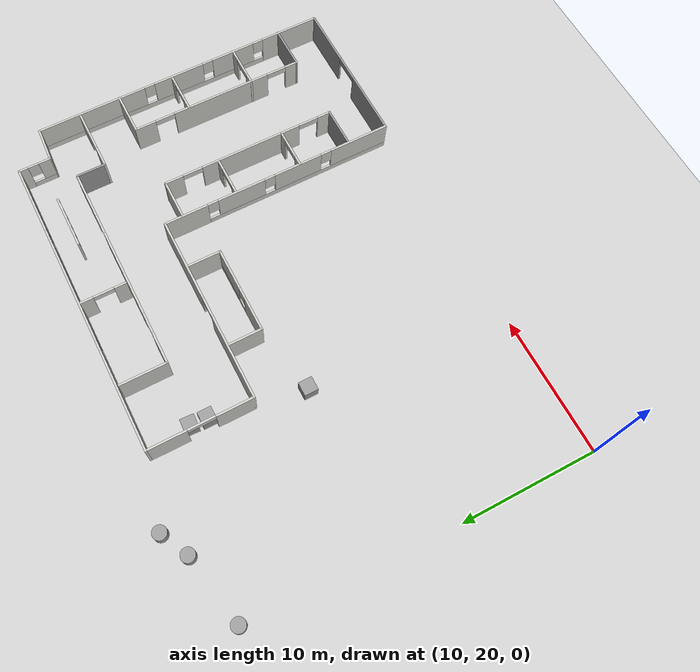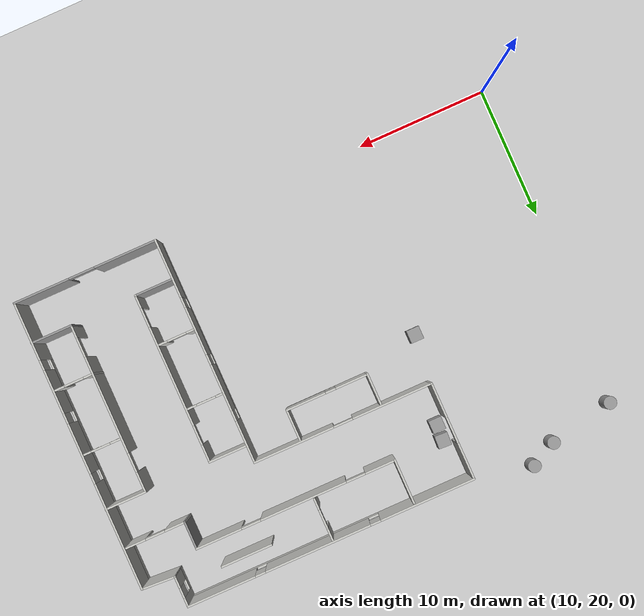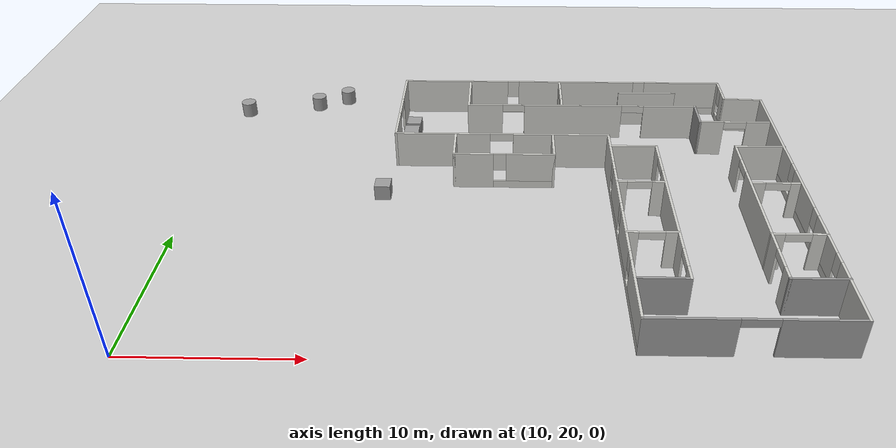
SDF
<sdf version="1.6">
 <world name="default">
  <model name="ground_plane">
   <static>1</static>
   <link name="link">
    <collision name="collision">
     <geometry><plane><normal>0 0 1</normal><size>100 100</size></plane></geometry>
     <surface><friction><ode><mu>100</mu><mu2>50</mu2></ode></friction></surface>
    </collision>
    <visual name="visual">
     <cast_shadows>0</cast_shadows>
     <geometry><plane><normal>0 0 1</normal><size>100 100</size></plane></geometry>
     <material>
      <script><uri>file://media/materials/scripts/gazebo.material</uri><name>Gazebo/Grey</name></script>
     </material>
    </visual>
   </link>
  </model>
  <model name="Multi_25_6">
   <pose>35.1581 33.1773 0 0 -0 0</pose>
   <link name="Wall_168">
    <pose>-1.27401 12.5 0 0 -0 0</pose>
    <visual name="Wall_168_Visual_0">
     <pose>-7.61112 0 1.25 0 -0 0</pose>
     <geometry><box><size>7.42777 0.15 2.5</size></box></geometry>
     <material>
      <script><uri>file://media/materials/scripts/gazebo.material</uri><name>Gazebo/CeilingTiled</name></script>
      <ambient>1 1 1 1</ambient>
     </material>
     <meta><layer>0</layer></meta>
    </visual>
    <collision name="Wall_168_Collision_0">
     <geometry><box><size>7.42777 0.15 2.5</size></box></geometry>
     <pose>-7.61112 0 1.25 0 -0 0</pose>
    </collision>
    <visual name="Wall_168_Visual_1">
     <pose>3.71388 0 0.25 0 -0 0</pose>
     <geometry><box><size>15.2222 0.15 0.5</size></box></geometry>
     <material>
      <script><uri>file://media/materials/scripts/gazebo.material</uri><name>Gazebo/CeilingTiled</name></script>
      <ambient>1 1 1 1</ambient>
     </material>
     <meta><layer>0</layer></meta>
    </visual>
    <collision name="Wall_168_Collision_1">
     <geometry><box><size>15.2222 0.15 0.5</size></box></geometry>
     <pose>3.71388 0 0.25 0 -0 0</pose>
    </collision>
    <visual name="Wall_168_Visual_2">
     <pose>1.03498 0 1.5 0 -0 0</pose>
     <geometry><box><size>8.26441 0.15 2</size></box></geometry>
     <material>
      <script><uri>file://media/materials/scripts/gazebo.material</uri><name>Gazebo/CeilingTiled</name></script>
      <ambient>1 1 1 1</ambient>
     </material>
     <meta><layer>0</layer></meta>
    </visual>
    <collision name="Wall_168_Collision_2">
     <geometry><box><size>8.26441 0.15 2</size></box></geometry>
     <pose>1.03498 0 1.5 0 -0 0</pose>
    </collision>
    <visual name="Wall_168_Visual_3">
     <pose>8.64609 0 1.5 0 -0 0</pose>
     <geometry><box><size>5.35782 0.15 2</size></box></geometry>
     <material>
      <script><uri>file://media/materials/scripts/gazebo.material</uri><name>Gazebo/CeilingTiled</name></script>
      <ambient>1 1 1 1</ambient>
     </material>
     <meta><layer>0</layer></meta>
    </visual>
    <collision name="Wall_168_Collision_3">
     <geometry><box><size>5.35782 0.15 2</size></box></geometry>
     <pose>8.64609 0 1.5 0 -0 0</pose>
    </collision>
    <visual name="Wall_168_Visual_4">
     <pose>-3.49723 0 1.9 0 -0 0</pose>
     <geometry><box><size>0.8 0.15 1.2</size></box></geometry>
     <material>
      <script><uri>file://media/materials/scripts/gazebo.material</uri><name>Gazebo/CeilingTiled</name></script>
      <ambient>1 1 1 1</ambient>
     </material>
     <meta><layer>0</layer></meta>
    </visual>
    <collision name="Wall_168_Collision_4">
     <geometry><box><size>0.8 0.15 1.2</size></box></geometry>
     <pose>-3.49723 0 1.9 0 -0 0</pose>
    </collision>
    <visual name="Wall_168_Visual_5">
     <pose>5.56718 0 1.9 0 -0 0</pose>
     <geometry><box><size>0.8 0.15 1.2</size></box></geometry>
     <material>
      <script><uri>file://media/materials/scripts/gazebo.material</uri><name>Gazebo/CeilingTiled</name></script>
      <ambient>1 1 1 1</ambient>
     </material>
     <meta><layer>0</layer></meta>
    </visual>
    <collision name="Wall_168_Collision_5">
     <geometry><box><size>0.8 0.15 1.2</size></box></geometry>
     <pose>5.56718 0 1.9 0 -0 0</pose>
    </collision>
   </link>
   <link name="Wall_170">
    <pose>-12.524 8.743 0 0 -0 -1.5708</pose>
    <visual name="Wall_170_Visual_0">
     <pose>-2.38097 0 1.25 0 -0 0</pose>
     <geometry><box><size>2.90205 0.15 2.5</size></box></geometry>
     <material>
      <script><uri>file://media/materials/scripts/gazebo.material</uri><name>Gazebo/CeilingTiled</name></script>
      <ambient>1 1 1 1</ambient>
     </material>
     <meta><layer>0</layer></meta>
    </visual>
    <collision name="Wall_170_Collision_0">
     <geometry><box><size>2.90205 0.15 2.5</size></box></geometry>
     <pose>-2.38097 0 1.25 0 -0 0</pose>
    </collision>
    <visual name="Wall_170_Visual_1">
     <pose>2.45103 0 1.25 0 -0 0</pose>
     <geometry><box><size>2.76195 0.15 2.5</size></box></geometry>
     <material>
      <script><uri>file://media/materials/scripts/gazebo.material</uri><name>Gazebo/CeilingTiled</name></script>
      <ambient>1 1 1 1</ambient>
     </material>
     <meta><layer>0</layer></meta>
    </visual>
    <collision name="Wall_170_Collision_1">
     <geometry><box><size>2.76195 0.15 2.5</size></box></geometry>
     <pose>2.45103 0 1.25 0 -0 0</pose>
    </collision>
    <visual name="Wall_170_Visual_2">
     <pose>0.070053 0 2.25 0 -0 0</pose>
     <geometry><box><size>2 0.15 0.5</size></box></geometry>
     <material>
      <script><uri>file://media/materials/scripts/gazebo.material</uri><name>Gazebo/CeilingTiled</name></script>
      <ambient>1 1 1 1</ambient>
     </material>
     <meta><layer>0</layer></meta>
    </visual>
    <collision name="Wall_170_Collision_2">
     <geometry><box><size>2 0.15 0.5</size></box></geometry>
     <pose>0.070053 0 2.25 0 -0 0</pose>
    </collision>
   </link>
   <link name="Wall_171">
    <pose>-5.56134 4.98605 0 0 -0 7e-06</pose>
    <visual name="Wall_171_Visual_0">
     <pose>-3.898 0 1.25 0 -0 0</pose>
     <geometry><box><size>6.27934 0.15 2.5</size></box></geometry>
     <material>
      <script><uri>file://media/materials/scripts/gazebo.material</uri><name>Gazebo/CeilingTiled</name></script>
      <ambient>1 1 1 1</ambient>
     </material>
     <meta><layer>0</layer></meta>
    </visual>
    <collision name="Wall_171_Collision_0">
     <geometry><box><size>6.27934 0.15 2.5</size></box></geometry>
     <pose>-3.898 0 1.25 0 -0 0</pose>
    </collision>
    <visual name="Wall_171_Visual_1">
     <pose>3.88967 0 1.25 0 -0 0</pose>
     <geometry><box><size>6.29601 0.15 2.5</size></box></geometry>
     <material>
      <script><uri>file://media/materials/scripts/gazebo.material</uri><name>Gazebo/CeilingTiled</name></script>
      <ambient>1 1 1 1</ambient>
     </material>
     <meta><layer>0</layer></meta>
    </visual>
    <collision name="Wall_171_Collision_1">
     <geometry><box><size>6.29601 0.15 2.5</size></box></geometry>
     <pose>3.88967 0 1.25 0 -0 0</pose>
    </collision>
    <visual name="Wall_171_Visual_2">
     <pose>-0.008335 0 2.25 0 -0 0</pose>
     <geometry><box><size>1.5 0.15 0.5</size></box></geometry>
     <material>
      <script><uri>file://media/materials/scripts/gazebo.material</uri><name>Gazebo/CeilingTiled</name></script>
      <ambient>1 1 1 1</ambient>
     </material>
     <meta><layer>0</layer></meta>
    </visual>
    <collision name="Wall_171_Collision_2">
     <geometry><box><size>1.5 0.15 0.5</size></box></geometry>
     <pose>-0.008335 0 2.25 0 -0 0</pose>
    </collision>
   </link>
   <link name="Wall_172">
    <pose>1.40116 -3.75695 0 0 -0 -1.57082</pose>
    <visual name="Wall_172_Visual_0">
     <pose>-7.15342 0 1.25 0 -0 0</pose>
     <geometry><box><size>3.32925 0.15 2.5</size></box></geometry>
     <material>
      <script><uri>file://media/materials/scripts/gazebo.material</uri><name>Gazebo/CeilingTiled</name></script>
      <ambient>1 1 1 1</ambient>
     </material>
     <meta><layer>0</layer></meta>
    </visual>
    <collision name="Wall_172_Collision_0">
     <geometry><box><size>3.32925 0.15 2.5</size></box></geometry>
     <pose>-7.15342 0 1.25 0 -0 0</pose>
    </collision>
    <visual name="Wall_172_Visual_1">
     <pose>1.66463 0 0.25 0 -0 0</pose>
     <geometry><box><size>14.3068 0.15 0.5</size></box></geometry>
     <material>
      <script><uri>file://media/materials/scripts/gazebo.material</uri><name>Gazebo/CeilingTiled</name></script>
      <ambient>1 1 1 1</ambient>
     </material>
     <meta><layer>0</layer></meta>
    </visual>
    <collision name="Wall_172_Collision_1">
     <geometry><box><size>14.3068 0.15 0.5</size></box></geometry>
     <pose>1.66463 0 0.25 0 -0 0</pose>
    </collision>
    <visual name="Wall_172_Visual_2">
     <pose>-2.86831 0 1.5 0 -0 0</pose>
     <geometry><box><size>3.64096 0.15 2</size></box></geometry>
     <material>
      <script><uri>file://media/materials/scripts/gazebo.material</uri><name>Gazebo/CeilingTiled</name></script>
      <ambient>1 1 1 1</ambient>
     </material>
     <meta><layer>0</layer></meta>
    </visual>
    <collision name="Wall_172_Collision_2">
     <geometry><box><size>3.64096 0.15 2</size></box></geometry>
     <pose>-2.86831 0 1.5 0 -0 0</pose>
    </collision>
    <visual name="Wall_172_Visual_3">
     <pose>1.60306 0 1.5 0 -0 0</pose>
     <geometry><box><size>3.70179 0.15 2</size></box></geometry>
     <material>
      <script><uri>file://media/materials/scripts/gazebo.material</uri><name>Gazebo/CeilingTiled</name></script>
      <ambient>1 1 1 1</ambient>
     </material>
     <meta><layer>0</layer></meta>
    </visual>
    <collision name="Wall_172_Collision_3">
     <geometry><box><size>3.70179 0.15 2</size></box></geometry>
     <pose>1.60306 0 1.5 0 -0 0</pose>
    </collision>
    <visual name="Wall_172_Visual_4">
     <pose>6.536 0 1.5 0 -0 0</pose>
     <geometry><box><size>4.56409 0.15 2</size></box></geometry>
     <material>
      <script><uri>file://media/materials/scripts/gazebo.material</uri><name>Gazebo/CeilingTiled</name></script>
      <ambient>1 1 1 1</ambient>
     </material>
     <meta><layer>0</layer></meta>
    </visual>
    <collision name="Wall_172_Collision_4">
     <geometry><box><size>4.56409 0.15 2</size></box></geometry>
     <pose>6.536 0 1.5 0 -0 0</pose>
    </collision>
    <visual name="Wall_172_Visual_5">
     <pose>-5.08879 0 1.9 0 -0 0</pose>
     <geometry><box><size>0.8 0.15 1.2</size></box></geometry>
     <material>
      <script><uri>file://media/materials/scripts/gazebo.material</uri><name>Gazebo/CeilingTiled</name></script>
      <ambient>1 1 1 1</ambient>
     </material>
     <meta><layer>0</layer></meta>
    </visual>
    <collision name="Wall_172_Collision_5">
     <geometry><box><size>0.8 0.15 1.2</size></box></geometry>
     <pose>-5.08879 0 1.9 0 -0 0</pose>
    </collision>
    <visual name="Wall_172_Visual_6">
     <pose>-0.647836 0 1.9 0 -0 0</pose>
     <geometry><box><size>0.8 0.15 1.2</size></box></geometry>
     <material>
      <script><uri>file://media/materials/scripts/gazebo.material</uri><name>Gazebo/CeilingTiled</name></script>
      <ambient>1 1 1 1</ambient>
     </material>
     <meta><layer>0</layer></meta>
    </visual>
    <collision name="Wall_172_Collision_6">
     <geometry><box><size>0.8 0.15 1.2</size></box></geometry>
     <pose>-0.647836 0 1.9 0 -0 0</pose>
    </collision>
    <visual name="Wall_172_Visual_7">
     <pose>3.85395 0 1.9 0 -0 0</pose>
     <geometry><box><size>0.8 0.15 1.2</size></box></geometry>
     <material>
      <script><uri>file://media/materials/scripts/gazebo.material</uri><name>Gazebo/CeilingTiled</name></script>
      <ambient>1 1 1 1</ambient>
     </material>
     <meta><layer>0</layer></meta>
    </visual>
    <collision name="Wall_172_Collision_7">
     <geometry><box><size>0.8 0.15 1.2</size></box></geometry>
     <pose>3.85395 0 1.9 0 -0 0</pose>
    </collision>
   </link>
   <link name="Wall_173">
    <pose>6.95099 -12.5 0 0 -0 0</pose>
    <visual name="Wall_173_Visual_0">
     <pose>-3.18207 0 1.25 0 -0 0</pose>
     <geometry><box><size>4.88587 0.15 2.5</size></box></geometry>
     <material>
      <script><uri>file://media/materials/scripts/gazebo.material</uri><name>Gazebo/Grey</name></script>
      <ambient>1 1 1 1</ambient>
     </material>
     <meta><layer>0</layer></meta>
    </visual>
    <collision name="Wall_173_Collision_0">
     <geometry><box><size>4.88587 0.15 2.5</size></box></geometry>
     <pose>-3.18207 0 1.25 0 -0 0</pose>
    </collision>
    <visual name="Wall_173_Visual_1">
     <pose>3.44293 0 1.25 0 -0 0</pose>
     <geometry><box><size>4.36413 0.15 2.5</size></box></geometry>
     <material>
      <script><uri>file://media/materials/scripts/gazebo.material</uri><name>Gazebo/Grey</name></script>
      <ambient>1 1 1 1</ambient>
     </material>
     <meta><layer>0</layer></meta>
    </visual>
    <collision name="Wall_173_Collision_1">
     <geometry><box><size>4.36413 0.15 2.5</size></box></geometry>
     <pose>3.44293 0 1.25 0 -0 0</pose>
    </collision>
    <visual name="Wall_173_Visual_2">
     <pose>0.260866 0 2.25 0 -0 0</pose>
     <geometry><box><size>2 0.15 0.5</size></box></geometry>
     <material>
      <script><uri>file://media/materials/scripts/gazebo.material</uri><name>Gazebo/Grey</name></script>
      <ambient>1 1 1 1</ambient>
     </material>
     <meta><layer>0</layer></meta>
    </visual>
    <collision name="Wall_173_Collision_2">
     <geometry><box><size>2 0.15 0.5</size></box></geometry>
     <pose>0.260866 0 2.25 0 -0 0</pose>
    </collision>
   </link>
   <link name="Wall_174">
    <pose>12.501 -1.25 0 0 -0 1.5708</pose>
    <visual name="Wall_174_Visual_0">
     <pose>-9.04295 0 1.25 0 -0 0</pose>
     <geometry><box><size>4.56409 0.15 2.5</size></box></geometry>
     <material>
      <script><uri>file://media/materials/scripts/gazebo.material</uri><name>Gazebo/CeilingTiled</name></script>
      <ambient>1 1 1 1</ambient>
     </material>
     <meta><layer>0</layer></meta>
    </visual>
    <collision name="Wall_174_Collision_0">
     <geometry><box><size>4.56409 0.15 2.5</size></box></geometry>
     <pose>-9.04295 0 1.25 0 -0 0</pose>
    </collision>
    <visual name="Wall_174_Visual_1">
     <pose>2.28205 0 0.25 0 -0 0</pose>
     <geometry><box><size>18.0859 0.15 0.5</size></box></geometry>
     <material>
      <script><uri>file://media/materials/scripts/gazebo.material</uri><name>Gazebo/CeilingTiled</name></script>
      <ambient>1 1 1 1</ambient>
     </material>
     <meta><layer>0</layer></meta>
    </visual>
    <collision name="Wall_174_Collision_1">
     <geometry><box><size>18.0859 0.15 0.5</size></box></geometry>
     <pose>2.28205 0 0.25 0 -0 0</pose>
    </collision>
    <visual name="Wall_174_Visual_2">
     <pose>-4.2621 0 1.5 0 -0 0</pose>
     <geometry><box><size>3.39762 0.15 2</size></box></geometry>
     <material>
      <script><uri>file://media/materials/scripts/gazebo.material</uri><name>Gazebo/CeilingTiled</name></script>
      <ambient>1 1 1 1</ambient>
     </material>
     <meta><layer>0</layer></meta>
    </visual>
    <collision name="Wall_174_Collision_2">
     <geometry><box><size>3.39762 0.15 2</size></box></geometry>
     <pose>-4.2621 0 1.5 0 -0 0</pose>
    </collision>
    <visual name="Wall_174_Visual_3">
     <pose>0.209274 0 1.5 0 -0 0</pose>
     <geometry><box><size>3.94513 0.15 2</size></box></geometry>
     <material>
      <script><uri>file://media/materials/scripts/gazebo.material</uri><name>Gazebo/CeilingTiled</name></script>
      <ambient>1 1 1 1</ambient>
     </material>
     <meta><layer>0</layer></meta>
    </visual>
    <collision name="Wall_174_Collision_3">
     <geometry><box><size>3.94513 0.15 2</size></box></geometry>
     <pose>0.209274 0 1.5 0 -0 0</pose>
    </collision>
    <visual name="Wall_174_Visual_4">
     <pose>7.15342 0 1.5 0 -0 0</pose>
     <geometry><box><size>8.34316 0.15 2</size></box></geometry>
     <material>
      <script><uri>file://media/materials/scripts/gazebo.material</uri><name>Gazebo/CeilingTiled</name></script>
      <ambient>1 1 1 1</ambient>
     </material>
     <meta><layer>0</layer></meta>
    </visual>
    <collision name="Wall_174_Collision_4">
     <geometry><box><size>8.34316 0.15 2</size></box></geometry>
     <pose>7.15342 0 1.5 0 -0 0</pose>
    </collision>
    <visual name="Wall_174_Visual_5">
     <pose>-6.36091 0 1.9 0 -0 0</pose>
     <geometry><box><size>0.8 0.15 1.2</size></box></geometry>
     <material>
      <script><uri>file://media/materials/scripts/gazebo.material</uri><name>Gazebo/CeilingTiled</name></script>
      <ambient>1 1 1 1</ambient>
     </material>
     <meta><layer>0</layer></meta>
    </visual>
    <collision name="Wall_174_Collision_5">
     <geometry><box><size>0.8 0.15 1.2</size></box></geometry>
     <pose>-6.36091 0 1.9 0 -0 0</pose>
    </collision>
    <visual name="Wall_174_Visual_6">
     <pose>-2.16329 0 1.9 0 -0 0</pose>
     <geometry><box><size>0.8 0.15 1.2</size></box></geometry>
     <material>
      <script><uri>file://media/materials/scripts/gazebo.material</uri><name>Gazebo/CeilingTiled</name></script>
      <ambient>1 1 1 1</ambient>
     </material>
     <meta><layer>0</layer></meta>
    </visual>
    <collision name="Wall_174_Collision_6">
     <geometry><box><size>0.8 0.15 1.2</size></box></geometry>
     <pose>-2.16329 0 1.9 0 -0 0</pose>
    </collision>
    <visual name="Wall_174_Visual_7">
     <pose>2.58184 0 1.9 0 -0 0</pose>
     <geometry><box><size>0.8 0.15 1.2</size></box></geometry>
     <material>
      <script><uri>file://media/materials/scripts/gazebo.material</uri><name>Gazebo/CeilingTiled</name></script>
      <ambient>1 1 1 1</ambient>
     </material>
     <meta><layer>0</layer></meta>
    </visual>
    <collision name="Wall_174_Collision_7">
     <geometry><box><size>0.8 0.15 1.2</size></box></geometry>
     <pose>2.58184 0 1.9 0 -0 0</pose>
    </collision>
   </link>
   <link name="Wall_176">
    <collision name="Wall_176_Collision">
     <geometry><box><size>3 0.15 2.5</size></box></geometry>
     <pose>0 0 1.25 0 -0 0</pose>
    </collision>
    <visual name="Wall_176_Visual">
     <pose>0 0 1.25 0 -0 0</pose>
     <geometry><box><size>3 0.15 2.5</size></box></geometry>
     <material>
      <script><uri>file://media/materials/scripts/gazebo.material</uri><name>Gazebo/CeilingTiled</name></script>
      <ambient>1 1 1 1</ambient>
     </material>
     <meta><layer>0</layer></meta>
    </visual>
    <pose>2.91134 3.64055 0 0 -0 0</pose>
   </link>
   <link name="Wall_177">
    <pose>4.33634 -2.90945 0 0 -0 -1.5708</pose>
    <visual name="Wall_177_Visual_0">
     <pose>-5.91337 0 1.25 0 -0 0</pose>
     <geometry><box><size>1.42326 0.15 2.5</size></box></geometry>
     <material>
      <script><uri>file://media/materials/scripts/gazebo.material</uri><name>Gazebo/CeilingTiled</name></script>
      <ambient>1 1 1 1</ambient>
     </material>
     <meta><layer>0</layer></meta>
    </visual>
    <collision name="Wall_177_Collision_0">
     <geometry><box><size>1.42326 0.15 2.5</size></box></geometry>
     <pose>-5.91337 0 1.25 0 -0 0</pose>
    </collision>
    <visual name="Wall_177_Visual_1">
     <pose>0.175864 0 1.25 0 -0 0</pose>
     <geometry><box><size>7.7552 0.15 2.5</size></box></geometry>
     <material>
      <script><uri>file://media/materials/scripts/gazebo.material</uri><name>Gazebo/CeilingTiled</name></script>
      <ambient>1 1 1 1</ambient>
     </material>
     <meta><layer>0</layer></meta>
    </visual>
    <collision name="Wall_177_Collision_1">
     <geometry><box><size>7.7552 0.15 2.5</size></box></geometry>
     <pose>0.175864 0 1.25 0 -0 0</pose>
    </collision>
    <visual name="Wall_177_Visual_2">
     <pose>6.08923 0 1.25 0 -0 0</pose>
     <geometry><box><size>1.07154 0.15 2.5</size></box></geometry>
     <material>
      <script><uri>file://media/materials/scripts/gazebo.material</uri><name>Gazebo/CeilingTiled</name></script>
      <ambient>1 1 1 1</ambient>
     </material>
     <meta><layer>0</layer></meta>
    </visual>
    <collision name="Wall_177_Collision_2">
     <geometry><box><size>1.07154 0.15 2.5</size></box></geometry>
     <pose>6.08923 0 1.25 0 -0 0</pose>
    </collision>
    <visual name="Wall_177_Visual_3">
     <pose>-4.45174 0 2.25 0 -0 0</pose>
     <geometry><box><size>1.5 0.15 0.5</size></box></geometry>
     <material>
      <script><uri>file://media/materials/scripts/gazebo.material</uri><name>Gazebo/CeilingTiled</name></script>
      <ambient>1 1 1 1</ambient>
     </material>
     <meta><layer>0</layer></meta>
    </visual>
    <collision name="Wall_177_Collision_3">
     <geometry><box><size>1.5 0.15 0.5</size></box></geometry>
     <pose>-4.45174 0 2.25 0 -0 0</pose>
    </collision>
    <visual name="Wall_177_Visual_4">
     <pose>4.80346 0 2.25 0 -0 0</pose>
     <geometry><box><size>1.5 0.15 0.5</size></box></geometry>
     <material>
      <script><uri>file://media/materials/scripts/gazebo.material</uri><name>Gazebo/CeilingTiled</name></script>
      <ambient>1 1 1 1</ambient>
     </material>
     <meta><layer>0</layer></meta>
    </visual>
    <collision name="Wall_177_Collision_4">
     <geometry><box><size>1.5 0.15 0.5</size></box></geometry>
     <pose>4.80346 0 2.25 0 -0 0</pose>
    </collision>
   </link>
   <link name="Wall_178">
    <collision name="Wall_178_Collision">
     <geometry><box><size>3 0.15 2.5</size></box></geometry>
     <pose>0 0 1.25 0 -0 0</pose>
    </collision>
    <visual name="Wall_178_Visual">
     <pose>0 0 1.25 0 -0 0</pose>
     <geometry><box><size>3 0.15 2.5</size></box></geometry>
     <material>
      <script><uri>file://media/materials/scripts/gazebo.material</uri><name>Gazebo/Grey</name></script>
      <ambient>1 1 1 1</ambient>
     </material>
     <meta><layer>0</layer></meta>
    </visual>
    <pose>2.91134 -9.45945 0 0 -0 3.14159</pose>
   </link>
   <link name="Wall_180">
    <pose>2.83153 -0.472315 0 0 -0 0</pose>
    <visual name="Wall_180_Visual_0">
     <pose>-1.15169 0 1.25 0 -0 0</pose>
     <geometry><box><size>0.696626 0.15 2.5</size></box></geometry>
     <material>
      <script><uri>file://media/materials/scripts/gazebo.material</uri><name>Gazebo/CeilingTiled</name></script>
      <ambient>1 1 1 1</ambient>
     </material>
     <meta><layer>0</layer></meta>
    </visual>
    <collision name="Wall_180_Collision_0">
     <geometry><box><size>0.696626 0.15 2.5</size></box></geometry>
     <pose>-1.15169 0 1.25 0 -0 0</pose>
    </collision>
    <visual name="Wall_180_Visual_1">
     <pose>1.09831 0 1.25 0 -0 0</pose>
     <geometry><box><size>0.803374 0.15 2.5</size></box></geometry>
     <material>
      <script><uri>file://media/materials/scripts/gazebo.material</uri><name>Gazebo/CeilingTiled</name></script>
      <ambient>1 1 1 1</ambient>
     </material>
     <meta><layer>0</layer></meta>
    </visual>
    <collision name="Wall_180_Collision_1">
     <geometry><box><size>0.803374 0.15 2.5</size></box></geometry>
     <pose>1.09831 0 1.25 0 -0 0</pose>
    </collision>
    <visual name="Wall_180_Visual_2">
     <pose>-0.053374 0 2.25 0 -0 0</pose>
     <geometry><box><size>1.5 0.15 0.5</size></box></geometry>
     <material>
      <script><uri>file://media/materials/scripts/gazebo.material</uri><name>Gazebo/CeilingTiled</name></script>
      <ambient>1 1 1 1</ambient>
     </material>
     <meta><layer>0</layer></meta>
    </visual>
    <collision name="Wall_180_Collision_2">
     <geometry><box><size>1.5 0.15 0.5</size></box></geometry>
     <pose>-0.053374 0 2.25 0 -0 0</pose>
    </collision>
   </link>
   <link name="Wall_182">
    <pose>2.83908 -5.52091 0 0 -0 0</pose>
    <visual name="Wall_182_Visual_0">
     <pose>-1.12522 0 1.25 0 -0 0</pose>
     <geometry><box><size>0.749566 0.15 2.5</size></box></geometry>
     <material>
      <script><uri>file://media/materials/scripts/gazebo.material</uri><name>Gazebo/CeilingTiled</name></script>
      <ambient>1 1 1 1</ambient>
     </material>
     <meta><layer>0</layer></meta>
    </visual>
    <collision name="Wall_182_Collision_0">
     <geometry><box><size>0.749566 0.15 2.5</size></box></geometry>
     <pose>-1.12522 0 1.25 0 -0 0</pose>
    </collision>
    <visual name="Wall_182_Visual_1">
     <pose>1.12478 0 1.25 0 -0 0</pose>
     <geometry><box><size>0.750434 0.15 2.5</size></box></geometry>
     <material>
      <script><uri>file://media/materials/scripts/gazebo.material</uri><name>Gazebo/CeilingTiled</name></script>
      <ambient>1 1 1 1</ambient>
     </material>
     <meta><layer>0</layer></meta>
    </visual>
    <collision name="Wall_182_Collision_1">
     <geometry><box><size>0.750434 0.15 2.5</size></box></geometry>
     <pose>1.12478 0 1.25 0 -0 0</pose>
    </collision>
    <visual name="Wall_182_Visual_2">
     <pose>-0.000434 0 2.25 0 -0 0</pose>
     <geometry><box><size>1.5 0.15 0.5</size></box></geometry>
     <material>
      <script><uri>file://media/materials/scripts/gazebo.material</uri><name>Gazebo/CeilingTiled</name></script>
      <ambient>1 1 1 1</ambient>
     </material>
     <meta><layer>0</layer></meta>
    </visual>
    <collision name="Wall_182_Collision_2">
     <geometry><box><size>1.5 0.15 0.5</size></box></geometry>
     <pose>-0.000434 0 2.25 0 -0 0</pose>
    </collision>
   </link>
   <link name="Wall_186">
    <collision name="Wall_186_Collision">
     <geometry><box><size>3.25 0.15 2.5</size></box></geometry>
     <pose>0 0 1.25 0 -0 0</pose>
    </collision>
    <visual name="Wall_186_Visual">
     <pose>0 0 1.25 0 -0 0</pose>
     <geometry><box><size>3.25 0.15 2.5</size></box></geometry>
     <material>
      <script><uri>file://media/materials/scripts/gazebo.material</uri><name>Gazebo/Grey</name></script>
      <ambient>1 1 1 1</ambient>
     </material>
     <meta><layer>0</layer></meta>
    </visual>
    <pose>10.974 -9.37782 0 0 -0 3.14159</pose>
   </link>
   <link name="Wall_187">
    <pose>9.42401 -2.82782 0 0 -0 1.5708</pose>
    <visual name="Wall_187_Visual_0">
     <pose>-6.0998 0 1.25 0 -0 0</pose>
     <geometry><box><size>1.05039 0.15 2.5</size></box></geometry>
     <material>
      <script><uri>file://media/materials/scripts/gazebo.material</uri><name>Gazebo/CeilingTiled</name></script>
      <ambient>1 1 1 1</ambient>
     </material>
     <meta><layer>0</layer></meta>
    </visual>
    <collision name="Wall_187_Collision_0">
     <geometry><box><size>1.05039 0.15 2.5</size></box></geometry>
     <pose>-6.0998 0 1.25 0 -0 0</pose>
    </collision>
    <visual name="Wall_187_Visual_1">
     <pose>-0.287744 0 1.25 0 -0 0</pose>
     <geometry><box><size>7.57372 0.15 2.5</size></box></geometry>
     <material>
      <script><uri>file://media/materials/scripts/gazebo.material</uri><name>Gazebo/CeilingTiled</name></script>
      <ambient>1 1 1 1</ambient>
     </material>
     <meta><layer>0</layer></meta>
    </visual>
    <collision name="Wall_187_Collision_1">
     <geometry><box><size>7.57372 0.15 2.5</size></box></geometry>
     <pose>-0.287744 0 1.25 0 -0 0</pose>
    </collision>
    <visual name="Wall_187_Visual_2">
     <pose>5.81206 0 1.25 0 -0 0</pose>
     <geometry><box><size>1.62588 0.15 2.5</size></box></geometry>
     <material>
      <script><uri>file://media/materials/scripts/gazebo.material</uri><name>Gazebo/CeilingTiled</name></script>
      <ambient>1 1 1 1</ambient>
     </material>
     <meta><layer>0</layer></meta>
    </visual>
    <collision name="Wall_187_Collision_2">
     <geometry><box><size>1.62588 0.15 2.5</size></box></geometry>
     <pose>5.81206 0 1.25 0 -0 0</pose>
    </collision>
    <visual name="Wall_187_Visual_3">
     <pose>-4.82461 0 2.25 0 -0 0</pose>
     <geometry><box><size>1.5 0.15 0.5</size></box></geometry>
     <material>
      <script><uri>file://media/materials/scripts/gazebo.material</uri><name>Gazebo/CeilingTiled</name></script>
      <ambient>1 1 1 1</ambient>
     </material>
     <meta><layer>0</layer></meta>
    </visual>
    <collision name="Wall_187_Collision_3">
     <geometry><box><size>1.5 0.15 0.5</size></box></geometry>
     <pose>-4.82461 0 2.25 0 -0 0</pose>
    </collision>
    <visual name="Wall_187_Visual_4">
     <pose>4.24912 0 2.25 0 -0 0</pose>
     <geometry><box><size>1.5 0.15 0.5</size></box></geometry>
     <material>
      <script><uri>file://media/materials/scripts/gazebo.material</uri><name>Gazebo/CeilingTiled</name></script>
      <ambient>1 1 1 1</ambient>
     </material>
     <meta><layer>0</layer></meta>
    </visual>
    <collision name="Wall_187_Collision_4">
     <geometry><box><size>1.5 0.15 0.5</size></box></geometry>
     <pose>4.24912 0 2.25 0 -0 0</pose>
    </collision>
   </link>
   <link name="Wall_188">
    <collision name="Wall_188_Collision">
     <geometry><box><size>3.25 0.15 2.5</size></box></geometry>
     <pose>0 0 1.25 0 -0 0</pose>
    </collision>
    <visual name="Wall_188_Visual">
     <pose>0 0 1.25 0 -0 0</pose>
     <geometry><box><size>3.25 0.15 2.5</size></box></geometry>
     <material>
      <script><uri>file://media/materials/scripts/gazebo.material</uri><name>Gazebo/CeilingTiled</name></script>
      <ambient>1 1 1 1</ambient>
     </material>
     <meta><layer>0</layer></meta>
    </visual>
    <pose>10.974 3.72218 0 0 -0 0</pose>
   </link>
   <link name="Wall_191">
    <pose>10.9623 -5.57124 0 0 -0 0</pose>
    <visual name="Wall_191_Visual_0">
     <pose>-1.21362 0 1.25 0 -0 0</pose>
     <geometry><box><size>0.822751 0.15 2.5</size></box></geometry>
     <material>
      <script><uri>file://media/materials/scripts/gazebo.material</uri><name>Gazebo/CeilingTiled</name></script>
      <ambient>1 1 1 1</ambient>
     </material>
     <meta><layer>0</layer></meta>
    </visual>
    <collision name="Wall_191_Collision_0">
     <geometry><box><size>0.822751 0.15 2.5</size></box></geometry>
     <pose>-1.21362 0 1.25 0 -0 0</pose>
    </collision>
    <visual name="Wall_191_Visual_1">
     <pose>1.16138 0 1.25 0 -0 0</pose>
     <geometry><box><size>0.927249 0.15 2.5</size></box></geometry>
     <material>
      <script><uri>file://media/materials/scripts/gazebo.material</uri><name>Gazebo/CeilingTiled</name></script>
      <ambient>1 1 1 1</ambient>
     </material>
     <meta><layer>0</layer></meta>
    </visual>
    <collision name="Wall_191_Collision_1">
     <geometry><box><size>0.927249 0.15 2.5</size></box></geometry>
     <pose>1.16138 0 1.25 0 -0 0</pose>
    </collision>
    <visual name="Wall_191_Visual_2">
     <pose>-0.052249 0 2.25 0 -0 0</pose>
     <geometry><box><size>1.5 0.15 0.5</size></box></geometry>
     <material>
      <script><uri>file://media/materials/scripts/gazebo.material</uri><name>Gazebo/CeilingTiled</name></script>
      <ambient>1 1 1 1</ambient>
     </material>
     <meta><layer>0</layer></meta>
    </visual>
    <collision name="Wall_191_Collision_2">
     <geometry><box><size>1.5 0.15 0.5</size></box></geometry>
     <pose>-0.052249 0 2.25 0 -0 0</pose>
    </collision>
   </link>
   <link name="Wall_193">
    <pose>10.9072 -0.499118 0 0 -0 0</pose>
    <visual name="Wall_193_Visual_0">
     <pose>-1.04587 0 1.25 0 -0 0</pose>
     <geometry><box><size>0.908261 0.15 2.5</size></box></geometry>
     <material>
      <script><uri>file://media/materials/scripts/gazebo.material</uri><name>Gazebo/CeilingTiled</name></script>
      <ambient>1 1 1 1</ambient>
     </material>
     <meta><layer>0</layer></meta>
    </visual>
    <collision name="Wall_193_Collision_0">
     <geometry><box><size>0.908261 0.15 2.5</size></box></geometry>
     <pose>-1.04587 0 1.25 0 -0 0</pose>
    </collision>
    <visual name="Wall_193_Visual_1">
     <pose>1.20413 0 1.25 0 -0 0</pose>
     <geometry><box><size>0.591739 0.15 2.5</size></box></geometry>
     <material>
      <script><uri>file://media/materials/scripts/gazebo.material</uri><name>Gazebo/CeilingTiled</name></script>
      <ambient>1 1 1 1</ambient>
     </material>
     <meta><layer>0</layer></meta>
    </visual>
    <collision name="Wall_193_Collision_1">
     <geometry><box><size>0.591739 0.15 2.5</size></box></geometry>
     <pose>1.20413 0 1.25 0 -0 0</pose>
    </collision>
    <visual name="Wall_193_Visual_2">
     <pose>0.158261 0 2.25 0 -0 0</pose>
     <geometry><box><size>1.5 0.15 0.5</size></box></geometry>
     <material>
      <script><uri>file://media/materials/scripts/gazebo.material</uri><name>Gazebo/CeilingTiled</name></script>
      <ambient>1 1 1 1</ambient>
     </material>
     <meta><layer>0</layer></meta>
    </visual>
    <collision name="Wall_193_Collision_2">
     <geometry><box><size>1.5 0.15 0.5</size></box></geometry>
     <pose>0.158261 0 2.25 0 -0 0</pose>
    </collision>
   </link>
   <link name="Wall_195">
    <collision name="Wall_195_Collision">
     <geometry><box><size>3.5 0.15 2.5</size></box></geometry>
     <pose>0 0 1.25 0 -0 0</pose>
    </collision>
    <visual name="Wall_195_Visual">
     <pose>0 0 1.25 0 -0 0</pose>
     <geometry><box><size>3.5 0.15 2.5</size></box></geometry>
     <material>
      <script><uri>file://media/materials/scripts/gazebo.material</uri><name>Gazebo/CeilingTiled</name></script>
      <ambient>1 1 1 1</ambient>
     </material>
     <meta><layer>0</layer></meta>
    </visual>
    <pose>-7.86946 10.6312 0 0 -0 -1.5708</pose>
   </link>
   <link name="Wall_196">
    <pose>-0.069455 8.95618 0 0 -0 0</pose>
    <visual name="Wall_196_Visual_0">
     <pose>-6.66941 0 1.25 0 -0 0</pose>
     <geometry><box><size>2.41117 0.15 2.5</size></box></geometry>
     <material>
      <script><uri>file://media/materials/scripts/gazebo.material</uri><name>Gazebo/CeilingTiled</name></script>
      <ambient>1 1 1 1</ambient>
     </material>
     <meta><layer>0</layer></meta>
    </visual>
    <collision name="Wall_196_Collision_0">
     <geometry><box><size>2.41117 0.15 2.5</size></box></geometry>
     <pose>-6.66941 0 1.25 0 -0 0</pose>
    </collision>
    <visual name="Wall_196_Visual_1">
     <pose>-0.600409 0 1.25 0 -0 0</pose>
     <geometry><box><size>6.72684 0.15 2.5</size></box></geometry>
     <material>
      <script><uri>file://media/materials/scripts/gazebo.material</uri><name>Gazebo/CeilingTiled</name></script>
      <ambient>1 1 1 1</ambient>
     </material>
     <meta><layer>0</layer></meta>
    </visual>
    <collision name="Wall_196_Collision_1">
     <geometry><box><size>6.72684 0.15 2.5</size></box></geometry>
     <pose>-0.600409 0 1.25 0 -0 0</pose>
    </collision>
    <visual name="Wall_196_Visual_2">
     <pose>6.06901 0 1.25 0 -0 0</pose>
     <geometry><box><size>3.61199 0.15 2.5</size></box></geometry>
     <material>
      <script><uri>file://media/materials/scripts/gazebo.material</uri><name>Gazebo/CeilingTiled</name></script>
      <ambient>1 1 1 1</ambient>
     </material>
     <meta><layer>0</layer></meta>
    </visual>
    <collision name="Wall_196_Collision_2">
     <geometry><box><size>3.61199 0.15 2.5</size></box></geometry>
     <pose>6.06901 0 1.25 0 -0 0</pose>
    </collision>
    <visual name="Wall_196_Visual_3">
     <pose>-4.71383 0 2.25 0 -0 0</pose>
     <geometry><box><size>1.5 0.15 0.5</size></box></geometry>
     <material>
      <script><uri>file://media/materials/scripts/gazebo.material</uri><name>Gazebo/CeilingTiled</name></script>
      <ambient>1 1 1 1</ambient>
     </material>
     <meta><layer>0</layer></meta>
    </visual>
    <collision name="Wall_196_Collision_3">
     <geometry><box><size>1.5 0.15 0.5</size></box></geometry>
     <pose>-4.71383 0 2.25 0 -0 0</pose>
    </collision>
    <visual name="Wall_196_Visual_4">
     <pose>3.51301 0 2.25 0 -0 0</pose>
     <geometry><box><size>1.5 0.15 0.5</size></box></geometry>
     <material>
      <script><uri>file://media/materials/scripts/gazebo.material</uri><name>Gazebo/CeilingTiled</name></script>
      <ambient>1 1 1 1</ambient>
     </material>
     <meta><layer>0</layer></meta>
    </visual>
    <collision name="Wall_196_Collision_4">
     <geometry><box><size>1.5 0.15 0.5</size></box></geometry>
     <pose>3.51301 0 2.25 0 -0 0</pose>
    </collision>
   </link>
   <link name="Wall_197">
    <collision name="Wall_197_Collision">
     <geometry><box><size>2.25 0.15 2.5</size></box></geometry>
     <pose>0 0 1.25 0 -0 0</pose>
    </collision>
    <visual name="Wall_197_Visual">
     <pose>0 0 1.25 0 -0 0</pose>
     <geometry><box><size>2.25 0.15 2.5</size></box></geometry>
     <material>
      <script><uri>file://media/materials/scripts/gazebo.material</uri><name>Gazebo/Grey</name></script>
      <ambient>1 1 1 1</ambient>
     </material>
     <meta><layer>0</layer></meta>
    </visual>
    <pose>7.73055 7.90618 0 0 -0 -1.5708</pose>
   </link>
   <link name="Wall_198">
    <pose>10.0305 6.85618 0 0 -0 0</pose>
    <visual name="Wall_198_Visual_0">
     <pose>-1.54731 0 1.25 0 -0 0</pose>
     <geometry><box><size>1.65537 0.15 2.5</size></box></geometry>
     <material>
      <script><uri>file://media/materials/scripts/gazebo.material</uri><name>Gazebo/CeilingTiled</name></script>
      <ambient>1 1 1 1</ambient>
     </material>
     <meta><layer>0</layer></meta>
    </visual>
    <collision name="Wall_198_Collision_0">
     <geometry><box><size>1.65537 0.15 2.5</size></box></geometry>
     <pose>-1.54731 0 1.25 0 -0 0</pose>
    </collision>
    <visual name="Wall_198_Visual_1">
     <pose>1.57769 0 1.25 0 -0 0</pose>
     <geometry><box><size>1.59463 0.15 2.5</size></box></geometry>
     <material>
      <script><uri>file://media/materials/scripts/gazebo.material</uri><name>Gazebo/CeilingTiled</name></script>
      <ambient>1 1 1 1</ambient>
     </material>
     <meta><layer>0</layer></meta>
    </visual>
    <collision name="Wall_198_Collision_1">
     <geometry><box><size>1.59463 0.15 2.5</size></box></geometry>
     <pose>1.57769 0 1.25 0 -0 0</pose>
    </collision>
    <visual name="Wall_198_Visual_2">
     <pose>0.03037 0 2.25 0 -0 0</pose>
     <geometry><box><size>1.5 0.15 0.5</size></box></geometry>
     <material>
      <script><uri>file://media/materials/scripts/gazebo.material</uri><name>Gazebo/CeilingTiled</name></script>
      <ambient>1 1 1 1</ambient>
     </material>
     <meta><layer>0</layer></meta>
    </visual>
    <collision name="Wall_198_Collision_2">
     <geometry><box><size>1.5 0.15 0.5</size></box></geometry>
     <pose>0.03037 0 2.25 0 -0 0</pose>
    </collision>
   </link>
   <link name="Wall_200">
    <pose>-1.44551 10.8147 0 0 -0 -1.5708</pose>
    <visual name="Wall_200_Visual_0">
     <pose>-1.21113 0 1.25 0 -0 0</pose>
     <geometry><box><size>1.07773 0.15 2.5</size></box></geometry>
     <material>
      <script><uri>file://media/materials/scripts/gazebo.material</uri><name>Gazebo/CeilingTiled</name></script>
      <ambient>1 1 1 1</ambient>
     </material>
     <meta><layer>0</layer></meta>
    </visual>
    <collision name="Wall_200_Collision_0">
     <geometry><box><size>1.07773 0.15 2.5</size></box></geometry>
     <pose>-1.21113 0 1.25 0 -0 0</pose>
    </collision>
    <visual name="Wall_200_Visual_1">
     <pose>1.28887 0 1.25 0 -0 0</pose>
     <geometry><box><size>0.922267 0.15 2.5</size></box></geometry>
     <material>
      <script><uri>file://media/materials/scripts/gazebo.material</uri><name>Gazebo/CeilingTiled</name></script>
      <ambient>1 1 1 1</ambient>
     </material>
     <meta><layer>0</layer></meta>
    </visual>
    <collision name="Wall_200_Collision_1">
     <geometry><box><size>0.922267 0.15 2.5</size></box></geometry>
     <pose>1.28887 0 1.25 0 -0 0</pose>
    </collision>
    <visual name="Wall_200_Visual_2">
     <pose>0.077733 0 2.25 0 -0 0</pose>
     <geometry><box><size>1.5 0.15 0.5</size></box></geometry>
     <material>
      <script><uri>file://media/materials/scripts/gazebo.material</uri><name>Gazebo/CeilingTiled</name></script>
      <ambient>1 1 1 1</ambient>
     </material>
     <meta><layer>0</layer></meta>
    </visual>
    <collision name="Wall_200_Collision_2">
     <geometry><box><size>1.5 0.15 0.5</size></box></geometry>
     <pose>0.077733 0 2.25 0 -0 0</pose>
    </collision>
   </link>
   <link name="Wall_202">
    <collision name="Wall_202_Collision">
     <geometry><box><size>4 0.15 2.5</size></box></geometry>
     <pose>0 0 1.25 0 -0 0</pose>
    </collision>
    <visual name="Wall_202_Visual">
     <pose>0 0 1.25 0 -0 0</pose>
     <geometry><box><size>4 0.15 2.5</size></box></geometry>
     <material>
      <script><uri>file://media/materials/scripts/gazebo.material</uri><name>Gazebo/CeilingTiled</name></script>
      <ambient>1 1 1 1</ambient>
     </material>
     <meta><layer>0</layer></meta>
    </visual>
    <pose>4.65224 10.8788 0 0 -0 0</pose>
   </link>
   <link name="Wall_204">
    <collision name="Wall_204_Collision">
     <geometry><box><size>2.5 0.15 2.5</size></box></geometry>
     <pose>0 0 1.25 0 -0 0</pose>
    </collision>
    <visual name="Wall_204_Visual">
     <pose>0 0 1.25 0 -0 0</pose>
     <geometry><box><size>2.5 0.15 2.5</size></box></geometry>
     <material>
      <script><uri>file://media/materials/scripts/gazebo.material</uri><name>Gazebo/CeilingTiled</name></script>
      <ambient>1 1 1 1</ambient>
     </material>
     <meta><layer>0</layer></meta>
    </visual>
    <pose>-8.58807 3.68118 0 0 -0 -1.5708</pose>
   </link>
   <link name="Wall_205">
    <pose>-5.41306 2.50618 0 0 -0 0</pose>
    <visual name="Wall_205_Visual_0">
     <pose>-1.96035 0 1.25 0 -0 0</pose>
     <geometry><box><size>2.5793 0.15 2.5</size></box></geometry>
     <material>
      <script><uri>file://media/materials/scripts/gazebo.material</uri><name>Gazebo/CeilingTiled</name></script>
      <ambient>1 1 1 1</ambient>
     </material>
     <meta><layer>0</layer></meta>
    </visual>
    <collision name="Wall_205_Collision_0">
     <geometry><box><size>2.5793 0.15 2.5</size></box></geometry>
     <pose>-1.96035 0 1.25 0 -0 0</pose>
    </collision>
    <visual name="Wall_205_Visual_1">
     <pose>1.28965 0 0.25 0 -0 0</pose>
     <geometry><box><size>3.9207 0.15 0.5</size></box></geometry>
     <material>
      <script><uri>file://media/materials/scripts/gazebo.material</uri><name>Gazebo/CeilingTiled</name></script>
      <ambient>1 1 1 1</ambient>
     </material>
     <meta><layer>0</layer></meta>
    </visual>
    <collision name="Wall_205_Collision_1">
     <geometry><box><size>3.9207 0.15 0.5</size></box></geometry>
     <pose>1.28965 0 0.25 0 -0 0</pose>
    </collision>
    <visual name="Wall_205_Visual_2">
     <pose>1.68965 0 1.5 0 -0 0</pose>
     <geometry><box><size>3.1207 0.15 2</size></box></geometry>
     <material>
      <script><uri>file://media/materials/scripts/gazebo.material</uri><name>Gazebo/CeilingTiled</name></script>
      <ambient>1 1 1 1</ambient>
     </material>
     <meta><layer>0</layer></meta>
    </visual>
    <collision name="Wall_205_Collision_2">
     <geometry><box><size>3.1207 0.15 2</size></box></geometry>
     <pose>1.68965 0 1.5 0 -0 0</pose>
    </collision>
    <visual name="Wall_205_Visual_3">
     <pose>-0.270701 0 1.9 0 -0 0</pose>
     <geometry><box><size>0.8 0.15 1.2</size></box></geometry>
     <material>
      <script><uri>file://media/materials/scripts/gazebo.material</uri><name>Gazebo/CeilingTiled</name></script>
      <ambient>1 1 1 1</ambient>
     </material>
     <meta><layer>0</layer></meta>
    </visual>
    <collision name="Wall_205_Collision_3">
     <geometry><box><size>0.8 0.15 1.2</size></box></geometry>
     <pose>-0.270701 0 1.9 0 -0 0</pose>
    </collision>
   </link>
   <link name="Wall_206">
    <collision name="Wall_206_Collision">
     <geometry><box><size>2.5 0.15 2.5</size></box></geometry>
     <pose>0 0 1.25 0 -0 0</pose>
    </collision>
    <visual name="Wall_206_Visual">
     <pose>0 0 1.25 0 -0 0</pose>
     <geometry><box><size>2.5 0.15 2.5</size></box></geometry>
     <material>
      <script><uri>file://media/materials/scripts/gazebo.material</uri><name>Gazebo/CeilingTiled</name></script>
      <ambient>1 1 1 1</ambient>
     </material>
     <meta><layer>0</layer></meta>
    </visual>
    <pose>-2.23807 3.68118 0 0 -0 1.5708</pose>
   </link>
   <link name="Wall_208">
    <pose>9.97599 11.325 0 0 -0 -1.5708</pose>
    <visual name="Wall_208_Visual_0">
     <pose>-0.877725 0 1.25 0 -0 0</pose>
     <geometry><box><size>0.74455 0.15 2.5</size></box></geometry>
     <material>
      <script><uri>file://media/materials/scripts/gazebo.material</uri><name>Gazebo/CeilingTiled</name></script>
      <ambient>1 1 1 1</ambient>
     </material>
     <meta><layer>0</layer></meta>
    </visual>
    <collision name="Wall_208_Collision_0">
     <geometry><box><size>0.74455 0.15 2.5</size></box></geometry>
     <pose>-0.877725 0 1.25 0 -0 0</pose>
    </collision>
    <visual name="Wall_208_Visual_1">
     <pose>0.372275 0 0.25 0 -0 0</pose>
     <geometry><box><size>1.75545 0.15 0.5</size></box></geometry>
     <material>
      <script><uri>file://media/materials/scripts/gazebo.material</uri><name>Gazebo/CeilingTiled</name></script>
      <ambient>1 1 1 1</ambient>
     </material>
     <meta><layer>0</layer></meta>
    </visual>
    <collision name="Wall_208_Collision_1">
     <geometry><box><size>1.75545 0.15 0.5</size></box></geometry>
     <pose>0.372275 0 0.25 0 -0 0</pose>
    </collision>
    <visual name="Wall_208_Visual_2">
     <pose>0.772275 0 1.5 0 -0 0</pose>
     <geometry><box><size>0.95545 0.15 2</size></box></geometry>
     <material>
      <script><uri>file://media/materials/scripts/gazebo.material</uri><name>Gazebo/CeilingTiled</name></script>
      <ambient>1 1 1 1</ambient>
     </material>
     <meta><layer>0</layer></meta>
    </visual>
    <collision name="Wall_208_Collision_2">
     <geometry><box><size>0.95545 0.15 2</size></box></geometry>
     <pose>0.772275 0 1.5 0 -0 0</pose>
    </collision>
    <visual name="Wall_208_Visual_3">
     <pose>-0.10545 0 1.9 0 -0 0</pose>
     <geometry><box><size>0.8 0.15 1.2</size></box></geometry>
     <material>
      <script><uri>file://media/materials/scripts/gazebo.material</uri><name>Gazebo/CeilingTiled</name></script>
      <ambient>1 1 1 1</ambient>
     </material>
     <meta><layer>0</layer></meta>
    </visual>
    <collision name="Wall_208_Collision_3">
     <geometry><box><size>0.8 0.15 1.2</size></box></geometry>
     <pose>-0.10545 0 1.9 0 -0 0</pose>
    </collision>
   </link>
   <link name="Wall_209">
    <collision name="Wall_209_Collision">
     <geometry><box><size>2.67945 0.15 2.5</size></box></geometry>
     <pose>0 0 1.25 0 -0 0</pose>
    </collision>
    <visual name="Wall_209_Visual">
     <pose>0 0 1.25 0 -0 0</pose>
     <geometry><box><size>2.67945 0.15 2.5</size></box></geometry>
     <material>
      <script><uri>file://media/materials/scripts/gazebo.material</uri><name>Gazebo/CeilingTiled</name></script>
      <ambient>1 1 1 1</ambient>
     </material>
     <meta><layer>0</layer></meta>
    </visual>
    <pose>11.2385 10.075 0 0 -0 -0.059336</pose>
   </link>
   <static>1</static>
  </model>
  <model name="unit_box_21">
   <pose>22.1074 34.537 0.500411 -4e-06 0.000826 -0.000717</pose>
   <link name="link">
    <inertial>
     <mass>1</mass>
     <inertia>
      <ixx>0.166667</ixx>
      <ixy>0</ixy>
      <ixz>0</ixz>
      <iyy>0.166667</iyy>
      <iyz>0</iyz>
      <izz>0.166667</izz>
     </inertia>
    </inertial>
    <collision name="collision"><geometry><box><size>1 1 1</size></box></geometry></collision>
    <visual name="visual">
     <geometry><box><size>1 1 1</size></box></geometry>
     <material>
      <script><name>Gazebo/Grey</name><uri>file://media/materials/scripts/gazebo.material</uri></script>
     </material>
    </visual>
   </link>
  </model>
  <model name="unit_cylinder_11_clone_42">
   <pose>16 46 0.499991 -0 -0 -0</pose>
   <link name="link">
    <inertial>
     <mass>1</mass>
     <inertia><ixx>0.145833</ixx><ixy>0</ixy><ixz>0</ixz><iyy>0.145833</iyy><iyz>0</iyz><izz>0.125</izz></inertia>
    </inertial>
    <collision name="collision">
     <geometry><cylinder><radius>0.5</radius><length>1</length></cylinder></geometry>
    </collision>
    <visual name="visual">
     <geometry><cylinder><radius>0.5</radius><length>1</length></cylinder></geometry>
     <material>
      <script><name>Gazebo/Grey</name><uri>file://media/materials/scripts/gazebo.material</uri></script>
     </material>
    </visual>
   </link>
  </model>
  <model name="unit_cylinder_11_clone_43">
   <pose>18 47 0.499991 -0 -0 -0</pose>
   <link name="link">
    <inertial>
     <mass>1</mass>
     <inertia><ixx>0.145833</ixx><ixy>0</ixy><ixz>0</ixz><iyy>0.145833</iyy><iyz>0</iyz><izz>0.125</izz></inertia>
    </inertial>
    <collision name="collision">
     <geometry><cylinder><radius>0.5</radius><length>1</length></cylinder></geometry>
    </collision>
    <visual name="visual">
     <geometry><cylinder><radius>0.5</radius><length>1</length></cylinder></geometry>
     <material>
      <script><name>Gazebo/Grey</name><uri>file://media/materials/scripts/gazebo.material</uri></script>
     </material>
    </visual>
   </link>
  </model>
  <model name="unit_cylinder_11_clone_44">
   <pose>11 45 0.5 0 -0 0</pose>
   <link name="link">
    <inertial>
     <mass>1</mass>
     <inertia><ixx>0.145833</ixx><ixy>0</ixy><ixz>0</ixz><iyy>0.145833</iyy><iyz>0</iyz><izz>0.125</izz></inertia>
    </inertial>
    <collision name="collision">
     <geometry><cylinder><radius>0.5</radius><length>1</length></cylinder></geometry>
    </collision>
    <visual name="visual">
     <geometry><cylinder><radius>0.5</radius><length>1</length></cylinder></geometry>
     <material>
      <script><name>Gazebo/Grey</name><uri>file://media/materials/scripts/gazebo.material</uri></script>
     </material>
    </visual>
   </link>
  </model>
  <model name="unit_box_28_clone_50_clone_3">
   <pose>23.4025 42.5132 0.499995 1e-05 -0 -0.050241</pose>
   <link name="link">
    <inertial>
     <mass>1</mass>
     <inertia>
      <ixx>0.166667</ixx>
      <ixy>0</ixy>
      <ixz>0</ixz>
      <iyy>0.166667</iyy>
      <iyz>0</iyz>
      <izz>0.166667</izz>
     </inertia>
    </inertial>
    <collision name="collision"><geometry><box><size>1 1 1</size></box></geometry></collision>
    <visual name="visual">
     <geometry><box><size>1 1 1</size></box></geometry>
     <material>
      <script><name>Gazebo/Grey</name><uri>file://media/materials/scripts/gazebo.material</uri></script>
     </material>
    </visual>
   </link>
  </model>
  <model name="unit_box_28_clone_50_clone_4">
   <pose>23.3335 41.2922 0.5 0 -0 0</pose>
   <link name="link">
    <inertial>
     <mass>1</mass>
     <inertia>
      <ixx>0.166667</ixx>
      <ixy>0</ixy>
      <ixz>0</ixz>
      <iyy>0.166667</iyy>
      <iyz>0</iyz>
      <izz>0.166667</izz>
     </inertia>
    </inertial>
    <collision name="collision"><geometry><box><size>1 1 1</size></box></geometry></collision>
    <visual name="visual">
     <geometry><box><size>1 1 1</size></box></geometry>
     <material>
      <script><name>Gazebo/Grey</name><uri>file://media/materials/scripts/gazebo.material</uri></script>
     </material>
    </visual>
   </link>
  </model>
 </world>
</sdf>
